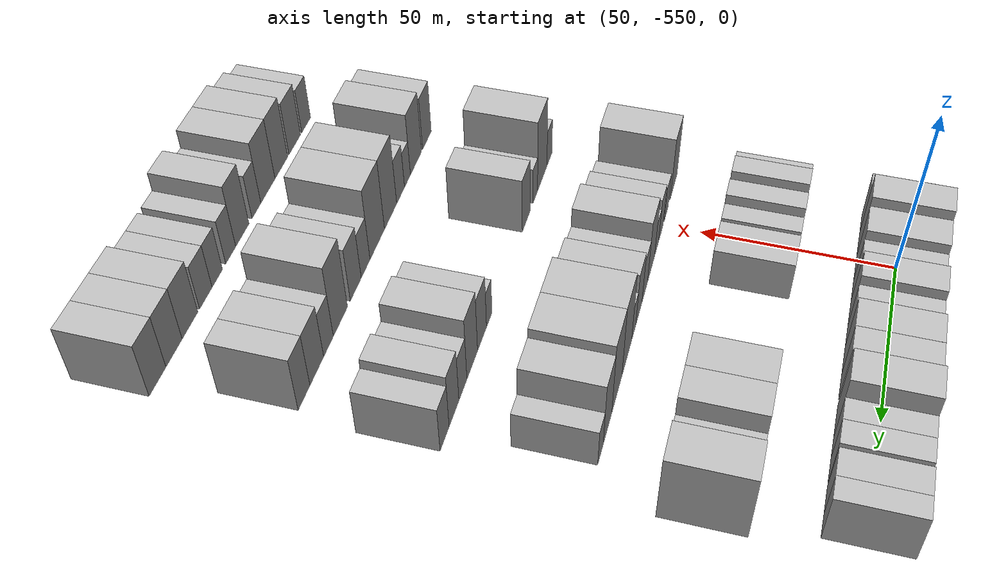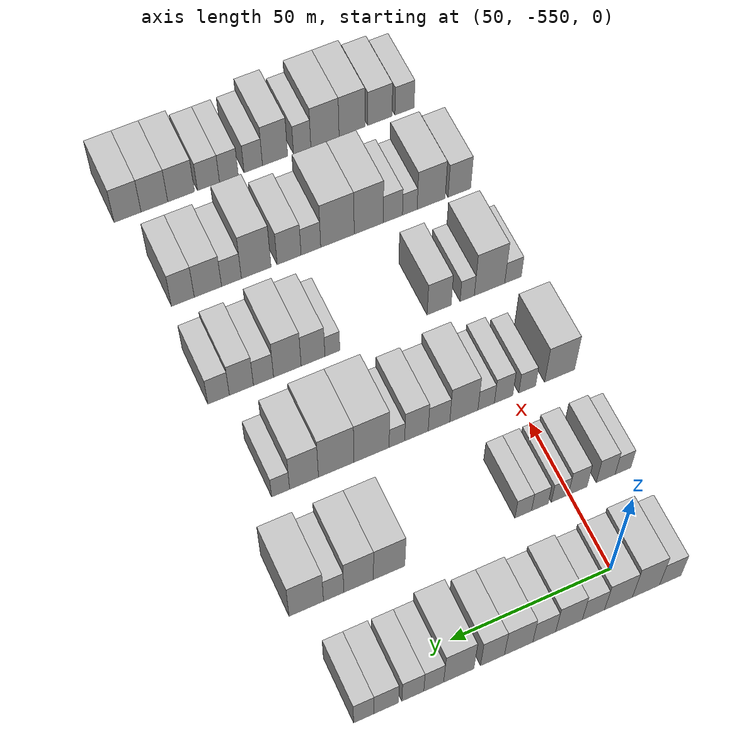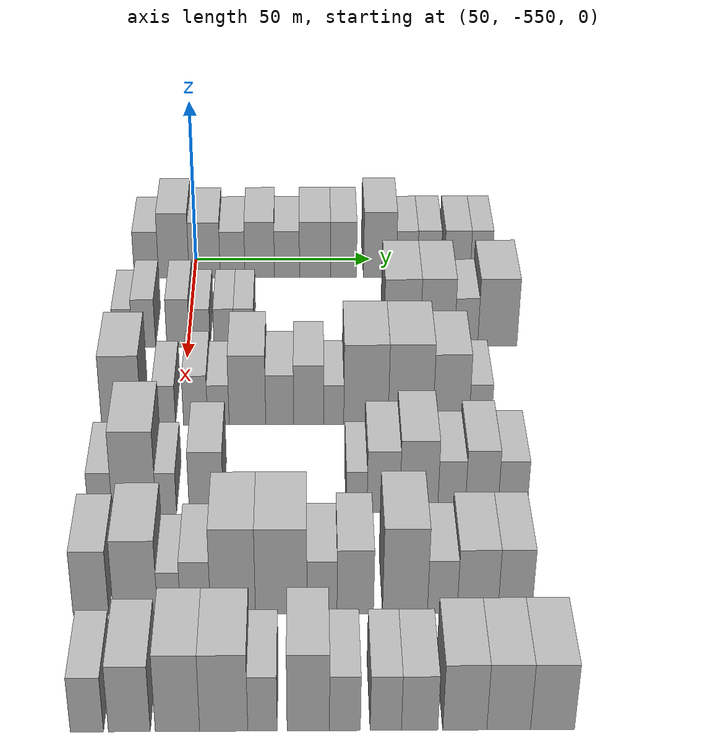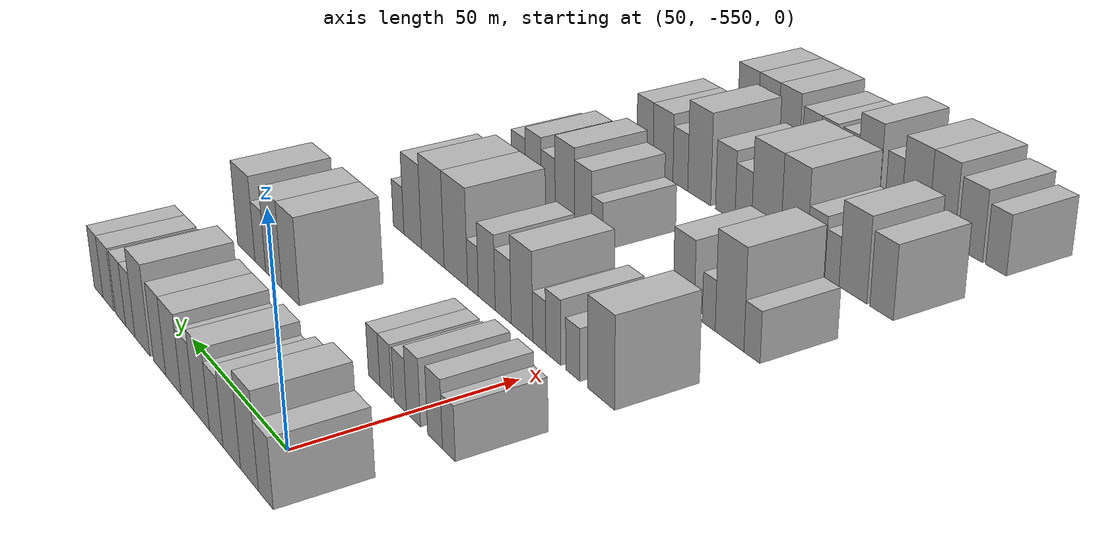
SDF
<sdf version="1.6">
 <world name="default">
  <model name="building_1">
   <static>1</static>
   <pose>50.0000 -563.5539 0 0.000000 0.000000 0.000000</pose>
   <link name="link">
    <pose>0 0 7.50 0 0 0</pose>
    <collision name="collision"><geometry><box><size>20.0000 6.8922 15.0000</size></box></geometry></collision>
    <visual name="visual">
     <cast_shadows>0</cast_shadows>
     <geometry><box><size>20.0000 6.8922 15.0000</size></box></geometry>
     <material>
      <script>
       <uri>model://HANNAS_wall/materials/scripts</uri>
       <uri>model://HANNAS_wall/materials/textures</uri>
       <name>vrc/HANNAS_wall</name>
      </script>
     </material>
    </visual>
   </link>
  </model>
  <model name="building_2">
   <static>1</static>
   <pose>50.0000 -555.8115 0 0.000000 0.000000 0.000000</pose>
   <link name="link">
    <pose>0 0 10.50 0 0 0</pose>
    <collision name="collision"><geometry><box><size>20.0000 8.5926 21.0000</size></box></geometry></collision>
    <visual name="visual">
     <cast_shadows>0</cast_shadows>
     <geometry><box><size>20.0000 8.5926 21.0000</size></box></geometry>
     <material>
      <script>
       <uri>model://HANNAS_wall/materials/scripts</uri>
       <uri>model://HANNAS_wall/materials/textures</uri>
       <name>vrc/HANNAS_wall</name>
      </script>
     </material>
    </visual>
   </link>
  </model>
  <model name="building_3">
   <static>1</static>
   <pose>50.0000 -547.1178 0 0.000000 0.000000 0.000000</pose>
   <link name="link">
    <pose>0 0 9.00 0 0 0</pose>
    <collision name="collision"><geometry><box><size>20.0000 8.7948 18.0000</size></box></geometry></collision>
    <visual name="visual">
     <cast_shadows>0</cast_shadows>
     <geometry><box><size>20.0000 8.7948 18.0000</size></box></geometry>
     <material>
      <script>
       <uri>model://HANNAS_wall/materials/scripts</uri>
       <uri>model://HANNAS_wall/materials/textures</uri>
       <name>vrc/HANNAS_wall</name>
      </script>
     </material>
    </visual>
   </link>
  </model>
  <model name="building_4">
   <static>1</static>
   <pose>50.0000 -539.2186 0 0.000000 0.000000 0.000000</pose>
   <link name="link">
    <pose>0 0 7.50 0 0 0</pose>
    <collision name="collision"><geometry><box><size>20.0000 7.0037 15.0000</size></box></geometry></collision>
    <visual name="visual">
     <cast_shadows>0</cast_shadows>
     <geometry><box><size>20.0000 7.0037 15.0000</size></box></geometry>
     <material>
      <script>
       <uri>model://HANNAS_wall/materials/scripts</uri>
       <uri>model://HANNAS_wall/materials/textures</uri>
       <name>vrc/HANNAS_wall</name>
      </script>
     </material>
    </visual>
   </link>
  </model>
  <model name="building_5">
   <static>1</static>
   <pose>50.0000 -531.5585 0 0.000000 0.000000 0.000000</pose>
   <link name="link">
    <pose>0 0 9.00 0 0 0</pose>
    <collision name="collision"><geometry><box><size>20.0000 8.3165 18.0000</size></box></geometry></collision>
    <visual name="visual">
     <cast_shadows>0</cast_shadows>
     <geometry><box><size>20.0000 8.3165 18.0000</size></box></geometry>
     <material>
      <script>
       <uri>model://HANNAS_wall/materials/scripts</uri>
       <uri>model://HANNAS_wall/materials/textures</uri>
       <name>vrc/HANNAS_wall</name>
      </script>
     </material>
    </visual>
   </link>
  </model>
  <model name="building_6">
   <static>1</static>
   <pose>50.0000 -523.8561 0 0.000000 0.000000 0.000000</pose>
   <link name="link">
    <pose>0 0 7.50 0 0 0</pose>
    <collision name="collision"><geometry><box><size>20.0000 7.0882 15.0000</size></box></geometry></collision>
    <visual name="visual">
     <cast_shadows>0</cast_shadows>
     <geometry><box><size>20.0000 7.0882 15.0000</size></box></geometry>
     <material>
      <script>
       <uri>model://HANNAS_wall/materials/scripts</uri>
       <uri>model://HANNAS_wall/materials/textures</uri>
       <name>vrc/HANNAS_wall</name>
      </script>
     </material>
    </visual>
   </link>
  </model>
  <model name="building_7">
   <static>1</static>
   <pose>50.0000 -515.9419 0 0.000000 0.000000 0.000000</pose>
   <link name="link">
    <pose>0 0 9.00 0 0 0</pose>
    <collision name="collision"><geometry><box><size>20.0000 8.7403 18.0000</size></box></geometry></collision>
    <visual name="visual">
     <cast_shadows>0</cast_shadows>
     <geometry><box><size>20.0000 8.7403 18.0000</size></box></geometry>
     <material>
      <script>
       <uri>model://HANNAS_wall/materials/scripts</uri>
       <uri>model://HANNAS_wall/materials/textures</uri>
       <name>vrc/HANNAS_wall</name>
      </script>
     </material>
    </visual>
   </link>
  </model>
  <model name="building_8">
   <static>1</static>
   <pose>50.0000 -507.8903 0 0.000000 0.000000 0.000000</pose>
   <link name="link">
    <pose>0 0 9.00 0 0 0</pose>
    <collision name="collision"><geometry><box><size>20.0000 7.3627 18.0000</size></box></geometry></collision>
    <visual name="visual">
     <cast_shadows>0</cast_shadows>
     <geometry><box><size>20.0000 7.3627 18.0000</size></box></geometry>
     <material>
      <script>
       <uri>model://HANNAS_wall/materials/scripts</uri>
       <uri>model://HANNAS_wall/materials/textures</uri>
       <name>vrc/HANNAS_wall</name>
      </script>
     </material>
    </visual>
   </link>
  </model>
  <model name="building_9">
   <static>1</static>
   <pose>50.0000 -497.5966 0 0.000000 0.000000 0.000000</pose>
   <link name="link">
    <pose>0 0 10.50 0 0 0</pose>
    <collision name="collision"><geometry><box><size>20.0000 9.2247 21.0000</size></box></geometry></collision>
    <visual name="visual">
     <cast_shadows>0</cast_shadows>
     <geometry><box><size>20.0000 9.2247 21.0000</size></box></geometry>
     <material>
      <script>
       <uri>model://HANNAS_wall/materials/scripts</uri>
       <uri>model://HANNAS_wall/materials/textures</uri>
       <name>vrc/HANNAS_wall</name>
      </script>
     </material>
    </visual>
   </link>
  </model>
  <model name="building_10">
   <static>1</static>
   <pose>50.0000 -489.9837 0 0.000000 0.000000 0.000000</pose>
   <link name="link">
    <pose>0 0 7.50 0 0 0</pose>
    <collision name="collision"><geometry><box><size>20.0000 6.0011 15.0000</size></box></geometry></collision>
    <visual name="visual">
     <cast_shadows>0</cast_shadows>
     <geometry><box><size>20.0000 6.0011 15.0000</size></box></geometry>
     <material>
      <script>
       <uri>model://HANNAS_wall/materials/scripts</uri>
       <uri>model://HANNAS_wall/materials/textures</uri>
       <name>vrc/HANNAS_wall</name>
      </script>
     </material>
    </visual>
   </link>
  </model>
  <model name="building_11">
   <static>1</static>
   <pose>50.0000 -483.6846 0 0.000000 0.000000 0.000000</pose>
   <link name="link">
    <pose>0 0 7.50 0 0 0</pose>
    <collision name="collision"><geometry><box><size>20.0000 6.5971 15.0000</size></box></geometry></collision>
    <visual name="visual">
     <cast_shadows>0</cast_shadows>
     <geometry><box><size>20.0000 6.5971 15.0000</size></box></geometry>
     <material>
      <script>
       <uri>model://HANNAS_wall/materials/scripts</uri>
       <uri>model://HANNAS_wall/materials/textures</uri>
       <name>vrc/HANNAS_wall</name>
      </script>
     </material>
    </visual>
   </link>
  </model>
  <model name="building_12">
   <static>1</static>
   <pose>50.0000 -475.7008 0 0.000000 0.000000 0.000000</pose>
   <link name="link">
    <pose>0 0 7.50 0 0 0</pose>
    <collision name="collision"><geometry><box><size>20.0000 7.3704 15.0000</size></box></geometry></collision>
    <visual name="visual">
     <cast_shadows>0</cast_shadows>
     <geometry><box><size>20.0000 7.3704 15.0000</size></box></geometry>
     <material>
      <script>
       <uri>model://HANNAS_wall/materials/scripts</uri>
       <uri>model://HANNAS_wall/materials/textures</uri>
       <name>vrc/HANNAS_wall</name>
      </script>
     </material>
    </visual>
   </link>
  </model>
  <model name="building_13">
   <static>1</static>
   <pose>50.0000 -468.9971 0 0.000000 0.000000 0.000000</pose>
   <link name="link">
    <pose>0 0 7.50 0 0 0</pose>
    <collision name="collision"><geometry><box><size>20.0000 6.0371 15.0000</size></box></geometry></collision>
    <visual name="visual">
     <cast_shadows>0</cast_shadows>
     <geometry><box><size>20.0000 6.0371 15.0000</size></box></geometry>
     <material>
      <script>
       <uri>model://HANNAS_wall/materials/scripts</uri>
       <uri>model://HANNAS_wall/materials/textures</uri>
       <name>vrc/HANNAS_wall</name>
      </script>
     </material>
    </visual>
   </link>
  </model>
  <model name="building_128">
   <static>1</static>
   <pose>85.0000 -567.4327 0 0.000000 0.000000 0.000000</pose>
   <link name="link">
    <pose>0 0 6.00 0 0 0</pose>
    <collision name="collision"><geometry><box><size>20.0000 5.1345 12.0000</size></box></geometry></collision>
    <visual name="visual">
     <cast_shadows>0</cast_shadows>
     <geometry><box><size>20.0000 5.1345 12.0000</size></box></geometry>
     <material>
      <script>
       <uri>model://HANNAS_wall/materials/scripts</uri>
       <uri>model://HANNAS_wall/materials/textures</uri>
       <name>vrc/HANNAS_wall</name>
      </script>
     </material>
    </visual>
   </link>
  </model>
  <model name="building_129">
   <static>1</static>
   <pose>85.0000 -561.7842 0 0.000000 0.000000 0.000000</pose>
   <link name="link">
    <pose>0 0 7.50 0 0 0</pose>
    <collision name="collision"><geometry><box><size>20.0000 6.1626 15.0000</size></box></geometry></collision>
    <visual name="visual">
     <cast_shadows>0</cast_shadows>
     <geometry><box><size>20.0000 6.1626 15.0000</size></box></geometry>
     <material>
      <script>
       <uri>model://HANNAS_wall/materials/scripts</uri>
       <uri>model://HANNAS_wall/materials/textures</uri>
       <name>vrc/HANNAS_wall</name>
      </script>
     </material>
    </visual>
   </link>
  </model>
  <model name="building_130">
   <static>1</static>
   <pose>85.0000 -552.6745 0 0.000000 0.000000 0.000000</pose>
   <link name="link">
    <pose>0 0 7.50 0 0 0</pose>
    <collision name="collision"><geometry><box><size>20.0000 6.0568 15.0000</size></box></geometry></collision>
    <visual name="visual">
     <cast_shadows>0</cast_shadows>
     <geometry><box><size>20.0000 6.0568 15.0000</size></box></geometry>
     <material>
      <script>
       <uri>model://HANNAS_wall/materials/scripts</uri>
       <uri>model://HANNAS_wall/materials/textures</uri>
       <name>vrc/HANNAS_wall</name>
      </script>
     </material>
    </visual>
   </link>
  </model>
  <model name="building_131">
   <static>1</static>
   <pose>85.0000 -546.8908 0 0.000000 0.000000 0.000000</pose>
   <link name="link">
    <pose>0 0 6.00 0 0 0</pose>
    <collision name="collision"><geometry><box><size>20.0000 5.5106 12.0000</size></box></geometry></collision>
    <visual name="visual">
     <cast_shadows>0</cast_shadows>
     <geometry><box><size>20.0000 5.5106 12.0000</size></box></geometry>
     <material>
      <script>
       <uri>model://HANNAS_wall/materials/scripts</uri>
       <uri>model://HANNAS_wall/materials/textures</uri>
       <name>vrc/HANNAS_wall</name>
      </script>
     </material>
    </visual>
   </link>
  </model>
  <model name="building_132">
   <static>1</static>
   <pose>85.0000 -540.4548 0 0.000000 0.000000 0.000000</pose>
   <link name="link">
    <pose>0 0 6.00 0 0 0</pose>
    <collision name="collision"><geometry><box><size>20.0000 5.3616 12.0000</size></box></geometry></collision>
    <visual name="visual">
     <cast_shadows>0</cast_shadows>
     <geometry><box><size>20.0000 5.3616 12.0000</size></box></geometry>
     <material>
      <script>
       <uri>model://HANNAS_wall/materials/scripts</uri>
       <uri>model://HANNAS_wall/materials/textures</uri>
       <name>vrc/HANNAS_wall</name>
      </script>
     </material>
    </visual>
   </link>
  </model>
  <model name="building_133">
   <static>1</static>
   <pose>85.0000 -535.1222 0 0.000000 0.000000 0.000000</pose>
   <link name="link">
    <pose>0 0 6.00 0 0 0</pose>
    <collision name="collision"><geometry><box><size>20.0000 5.3035 12.0000</size></box></geometry></collision>
    <visual name="visual">
     <cast_shadows>0</cast_shadows>
     <geometry><box><size>20.0000 5.3035 12.0000</size></box></geometry>
     <material>
      <script>
       <uri>model://HANNAS_wall/materials/scripts</uri>
       <uri>model://HANNAS_wall/materials/textures</uri>
       <name>vrc/HANNAS_wall</name>
      </script>
     </material>
    </visual>
   </link>
  </model>
  <model name="building_134">
   <static>1</static>
   <pose>85.0000 -492.9116 0 0.000000 0.000000 0.000000</pose>
   <link name="link">
    <pose>0 0 10.50 0 0 0</pose>
    <collision name="collision"><geometry><box><size>20.0000 9.7059 21.0000</size></box></geometry></collision>
    <visual name="visual">
     <cast_shadows>0</cast_shadows>
     <geometry><box><size>20.0000 9.7059 21.0000</size></box></geometry>
     <material>
      <script>
       <uri>model://HANNAS_wall/materials/scripts</uri>
       <uri>model://HANNAS_wall/materials/textures</uri>
       <name>vrc/HANNAS_wall</name>
      </script>
     </material>
    </visual>
   </link>
  </model>
  <model name="building_135">
   <static>1</static>
   <pose>85.0000 -483.4902 0 0.000000 0.000000 0.000000</pose>
   <link name="link">
    <pose>0 0 10.50 0 0 0</pose>
    <collision name="collision"><geometry><box><size>20.0000 9.1370 21.0000</size></box></geometry></collision>
    <visual name="visual">
     <cast_shadows>0</cast_shadows>
     <geometry><box><size>20.0000 9.1370 21.0000</size></box></geometry>
     <material>
      <script>
       <uri>model://HANNAS_wall/materials/scripts</uri>
       <uri>model://HANNAS_wall/materials/textures</uri>
       <name>vrc/HANNAS_wall</name>
      </script>
     </material>
    </visual>
   </link>
  </model>
  <model name="building_136">
   <static>1</static>
   <pose>85.0000 -475.8114 0 0.000000 0.000000 0.000000</pose>
   <link name="link">
    <pose>0 0 7.50 0 0 0</pose>
    <collision name="collision"><geometry><box><size>20.0000 6.2207 15.0000</size></box></geometry></collision>
    <visual name="visual">
     <cast_shadows>0</cast_shadows>
     <geometry><box><size>20.0000 6.2207 15.0000</size></box></geometry>
     <material>
      <script>
       <uri>model://HANNAS_wall/materials/scripts</uri>
       <uri>model://HANNAS_wall/materials/textures</uri>
       <name>vrc/HANNAS_wall</name>
      </script>
     </material>
    </visual>
   </link>
  </model>
  <model name="building_137">
   <static>1</static>
   <pose>85.0000 -467.4581 0 0.000000 0.000000 0.000000</pose>
   <link name="link">
    <pose>0 0 10.50 0 0 0</pose>
    <collision name="collision"><geometry><box><size>20.0000 10.4860 21.0000</size></box></geometry></collision>
    <visual name="visual">
     <cast_shadows>0</cast_shadows>
     <geometry><box><size>20.0000 10.4860 21.0000</size></box></geometry>
     <material>
      <script>
       <uri>model://HANNAS_wall/materials/scripts</uri>
       <uri>model://HANNAS_wall/materials/textures</uri>
       <name>vrc/HANNAS_wall</name>
      </script>
     </material>
    </visual>
   </link>
  </model>
  <model name="building_253">
   <static>1</static>
   <pose>120.0000 -564.9891 0 0.000000 0.000000 0.000000</pose>
   <link name="link">
    <pose>0 0 10.50 0 0 0</pose>
    <collision name="collision"><geometry><box><size>20.0000 10.0218 21.0000</size></box></geometry></collision>
    <visual name="visual">
     <cast_shadows>0</cast_shadows>
     <geometry><box><size>20.0000 10.0218 21.0000</size></box></geometry>
     <material>
      <script>
       <uri>model://HANNAS_wall/materials/scripts</uri>
       <uri>model://HANNAS_wall/materials/textures</uri>
       <name>vrc/HANNAS_wall</name>
      </script>
     </material>
    </visual>
   </link>
  </model>
  <model name="building_254">
   <static>1</static>
   <pose>120.0000 -554.2039 0 0.000000 0.000000 0.000000</pose>
   <link name="link">
    <pose>0 0 6.00 0 0 0</pose>
    <collision name="collision"><geometry><box><size>20.0000 5.5486 12.0000</size></box></geometry></collision>
    <visual name="visual">
     <cast_shadows>0</cast_shadows>
     <geometry><box><size>20.0000 5.5486 12.0000</size></box></geometry>
     <material>
      <script>
       <uri>model://HANNAS_wall/materials/scripts</uri>
       <uri>model://HANNAS_wall/materials/textures</uri>
       <name>vrc/HANNAS_wall</name>
      </script>
     </material>
    </visual>
   </link>
  </model>
  <model name="building_255">
   <static>1</static>
   <pose>120.0000 -546.4027 0 0.000000 0.000000 0.000000</pose>
   <link name="link">
    <pose>0 0 7.50 0 0 0</pose>
    <collision name="collision"><geometry><box><size>20.0000 6.0539 15.0000</size></box></geometry></collision>
    <visual name="visual">
     <cast_shadows>0</cast_shadows>
     <geometry><box><size>20.0000 6.0539 15.0000</size></box></geometry>
     <material>
      <script>
       <uri>model://HANNAS_wall/materials/scripts</uri>
       <uri>model://HANNAS_wall/materials/textures</uri>
       <name>vrc/HANNAS_wall</name>
      </script>
     </material>
    </visual>
   </link>
  </model>
  <model name="building_256">
   <static>1</static>
   <pose>120.0000 -540.6783 0 0.000000 0.000000 0.000000</pose>
   <link name="link">
    <pose>0 0 6.00 0 0 0</pose>
    <collision name="collision"><geometry><box><size>20.0000 5.3947 12.0000</size></box></geometry></collision>
    <visual name="visual">
     <cast_shadows>0</cast_shadows>
     <geometry><box><size>20.0000 5.3947 12.0000</size></box></geometry>
     <material>
      <script>
       <uri>model://HANNAS_wall/materials/scripts</uri>
       <uri>model://HANNAS_wall/materials/textures</uri>
       <name>vrc/HANNAS_wall</name>
      </script>
     </material>
    </visual>
   </link>
  </model>
  <model name="building_257">
   <static>1</static>
   <pose>120.0000 -533.3863 0 0.000000 0.000000 0.000000</pose>
   <link name="link">
    <pose>0 0 10.50 0 0 0</pose>
    <collision name="collision"><geometry><box><size>20.0000 9.1894 21.0000</size></box></geometry></collision>
    <visual name="visual">
     <cast_shadows>0</cast_shadows>
     <geometry><box><size>20.0000 9.1894 21.0000</size></box></geometry>
     <material>
      <script>
       <uri>model://HANNAS_wall/materials/scripts</uri>
       <uri>model://HANNAS_wall/materials/textures</uri>
       <name>vrc/HANNAS_wall</name>
      </script>
     </material>
    </visual>
   </link>
  </model>
  <model name="building_258">
   <static>1</static>
   <pose>120.0000 -525.2947 0 0.000000 0.000000 0.000000</pose>
   <link name="link">
    <pose>0 0 7.50 0 0 0</pose>
    <collision name="collision"><geometry><box><size>20.0000 6.9936 15.0000</size></box></geometry></collision>
    <visual name="visual">
     <cast_shadows>0</cast_shadows>
     <geometry><box><size>20.0000 6.9936 15.0000</size></box></geometry>
     <material>
      <script>
       <uri>model://HANNAS_wall/materials/scripts</uri>
       <uri>model://HANNAS_wall/materials/textures</uri>
       <name>vrc/HANNAS_wall</name>
      </script>
     </material>
    </visual>
   </link>
  </model>
  <model name="building_259">
   <static>1</static>
   <pose>120.0000 -517.9921 0 0.000000 0.000000 0.000000</pose>
   <link name="link">
    <pose>0 0 9.00 0 0 0</pose>
    <collision name="collision"><geometry><box><size>20.0000 7.6116 18.0000</size></box></geometry></collision>
    <visual name="visual">
     <cast_shadows>0</cast_shadows>
     <geometry><box><size>20.0000 7.6116 18.0000</size></box></geometry>
     <material>
      <script>
       <uri>model://HANNAS_wall/materials/scripts</uri>
       <uri>model://HANNAS_wall/materials/textures</uri>
       <name>vrc/HANNAS_wall</name>
      </script>
     </material>
    </visual>
   </link>
  </model>
  <model name="building_260">
   <static>1</static>
   <pose>120.0000 -511.6902 0 0.000000 0.000000 0.000000</pose>
   <link name="link">
    <pose>0 0 6.00 0 0 0</pose>
    <collision name="collision"><geometry><box><size>20.0000 4.9923 12.0000</size></box></geometry></collision>
    <visual name="visual">
     <cast_shadows>0</cast_shadows>
     <geometry><box><size>20.0000 4.9923 12.0000</size></box></geometry>
     <material>
      <script>
       <uri>model://HANNAS_wall/materials/scripts</uri>
       <uri>model://HANNAS_wall/materials/textures</uri>
       <name>vrc/HANNAS_wall</name>
      </script>
     </material>
    </visual>
   </link>
  </model>
  <model name="building_261">
   <static>1</static>
   <pose>120.0000 -503.5977 0 0.000000 0.000000 0.000000</pose>
   <link name="link">
    <pose>0 0 12.00 0 0 0</pose>
    <collision name="collision"><geometry><box><size>20.0000 11.1926 24.0000</size></box></geometry></collision>
    <visual name="visual">
     <cast_shadows>0</cast_shadows>
     <geometry><box><size>20.0000 11.1926 24.0000</size></box></geometry>
     <material>
      <script>
       <uri>model://HANNAS_wall/materials/scripts</uri>
       <uri>model://HANNAS_wall/materials/textures</uri>
       <name>vrc/HANNAS_wall</name>
      </script>
     </material>
    </visual>
   </link>
  </model>
  <model name="building_262">
   <static>1</static>
   <pose>120.0000 -492.3823 0 0.000000 0.000000 0.000000</pose>
   <link name="link">
    <pose>0 0 12.00 0 0 0</pose>
    <collision name="collision"><geometry><box><size>20.0000 11.2381 24.0000</size></box></geometry></collision>
    <visual name="visual">
     <cast_shadows>0</cast_shadows>
     <geometry><box><size>20.0000 11.2381 24.0000</size></box></geometry>
     <material>
      <script>
       <uri>model://HANNAS_wall/materials/scripts</uri>
       <uri>model://HANNAS_wall/materials/textures</uri>
       <name>vrc/HANNAS_wall</name>
      </script>
     </material>
    </visual>
   </link>
  </model>
  <model name="building_263">
   <static>1</static>
   <pose>120.0000 -482.2195 0 0.000000 0.000000 0.000000</pose>
   <link name="link">
    <pose>0 0 10.50 0 0 0</pose>
    <collision name="collision"><geometry><box><size>20.0000 9.0875 21.0000</size></box></geometry></collision>
    <visual name="visual">
     <cast_shadows>0</cast_shadows>
     <geometry><box><size>20.0000 9.0875 21.0000</size></box></geometry>
     <material>
      <script>
       <uri>model://HANNAS_wall/materials/scripts</uri>
       <uri>model://HANNAS_wall/materials/textures</uri>
       <name>vrc/HANNAS_wall</name>
      </script>
     </material>
    </visual>
   </link>
  </model>
  <model name="building_264">
   <static>1</static>
   <pose>120.0000 -474.8644 0 0.000000 0.000000 0.000000</pose>
   <link name="link">
    <pose>0 0 6.00 0 0 0</pose>
    <collision name="collision"><geometry><box><size>20.0000 5.6228 12.0000</size></box></geometry></collision>
    <visual name="visual">
     <cast_shadows>0</cast_shadows>
     <geometry><box><size>20.0000 5.6228 12.0000</size></box></geometry>
     <material>
      <script>
       <uri>model://HANNAS_wall/materials/scripts</uri>
       <uri>model://HANNAS_wall/materials/textures</uri>
       <name>vrc/HANNAS_wall</name>
      </script>
     </material>
    </visual>
   </link>
  </model>
  <model name="building_381">
   <static>1</static>
   <pose>155.0000 -567.1833 0 0.000000 0.000000 0.000000</pose>
   <link name="link">
    <pose>0 0 6.00 0 0 0</pose>
    <collision name="collision"><geometry><box><size>20.0000 5.6335 12.0000</size></box></geometry></collision>
    <visual name="visual">
     <cast_shadows>0</cast_shadows>
     <geometry><box><size>20.0000 5.6335 12.0000</size></box></geometry>
     <material>
      <script>
       <uri>model://HANNAS_wall/materials/scripts</uri>
       <uri>model://HANNAS_wall/materials/textures</uri>
       <name>vrc/HANNAS_wall</name>
      </script>
     </material>
    </visual>
   </link>
  </model>
  <model name="building_382">
   <static>1</static>
   <pose>155.0000 -559.2075 0 0.000000 0.000000 0.000000</pose>
   <link name="link">
    <pose>0 0 12.00 0 0 0</pose>
    <collision name="collision"><geometry><box><size>20.0000 10.3181 24.0000</size></box></geometry></collision>
    <visual name="visual">
     <cast_shadows>0</cast_shadows>
     <geometry><box><size>20.0000 10.3181 24.0000</size></box></geometry>
     <material>
      <script>
       <uri>model://HANNAS_wall/materials/scripts</uri>
       <uri>model://HANNAS_wall/materials/textures</uri>
       <name>vrc/HANNAS_wall</name>
      </script>
     </material>
    </visual>
   </link>
  </model>
  <model name="building_383">
   <static>1</static>
   <pose>155.0000 -551.6420 0 0.000000 0.000000 0.000000</pose>
   <link name="link">
    <pose>0 0 6.00 0 0 0</pose>
    <collision name="collision"><geometry><box><size>20.0000 4.8128 12.0000</size></box></geometry></collision>
    <visual name="visual">
     <cast_shadows>0</cast_shadows>
     <geometry><box><size>20.0000 4.8128 12.0000</size></box></geometry>
     <material>
      <script>
       <uri>model://HANNAS_wall/materials/scripts</uri>
       <uri>model://HANNAS_wall/materials/textures</uri>
       <name>vrc/HANNAS_wall</name>
      </script>
     </material>
    </visual>
   </link>
  </model>
  <model name="building_384">
   <static>1</static>
   <pose>155.0000 -542.2023 0 0.000000 0.000000 0.000000</pose>
   <link name="link">
    <pose>0 0 9.00 0 0 0</pose>
    <collision name="collision"><geometry><box><size>20.0000 8.0666 18.0000</size></box></geometry></collision>
    <visual name="visual">
     <cast_shadows>0</cast_shadows>
     <geometry><box><size>20.0000 8.0666 18.0000</size></box></geometry>
     <material>
      <script>
       <uri>model://HANNAS_wall/materials/scripts</uri>
       <uri>model://HANNAS_wall/materials/textures</uri>
       <name>vrc/HANNAS_wall</name>
      </script>
     </material>
    </visual>
   </link>
  </model>
  <model name="building_385">
   <static>1</static>
   <pose>155.0000 -506.8592 0 0.000000 0.000000 0.000000</pose>
   <link name="link">
    <pose>0 0 6.00 0 0 0</pose>
    <collision name="collision"><geometry><box><size>20.0000 4.8732 12.0000</size></box></geometry></collision>
    <visual name="visual">
     <cast_shadows>0</cast_shadows>
     <geometry><box><size>20.0000 4.8732 12.0000</size></box></geometry>
     <material>
      <script>
       <uri>model://HANNAS_wall/materials/scripts</uri>
       <uri>model://HANNAS_wall/materials/textures</uri>
       <name>vrc/HANNAS_wall</name>
      </script>
     </material>
    </visual>
   </link>
  </model>
  <model name="building_386">
   <static>1</static>
   <pose>155.0000 -500.5598 0 0.000000 0.000000 0.000000</pose>
   <link name="link">
    <pose>0 0 9.00 0 0 0</pose>
    <collision name="collision"><geometry><box><size>20.0000 7.7255 18.0000</size></box></geometry></collision>
    <visual name="visual">
     <cast_shadows>0</cast_shadows>
     <geometry><box><size>20.0000 7.7255 18.0000</size></box></geometry>
     <material>
      <script>
       <uri>model://HANNAS_wall/materials/scripts</uri>
       <uri>model://HANNAS_wall/materials/textures</uri>
       <name>vrc/HANNAS_wall</name>
      </script>
     </material>
    </visual>
   </link>
  </model>
  <model name="building_387">
   <static>1</static>
   <pose>155.0000 -492.2378 0 0.000000 0.000000 0.000000</pose>
   <link name="link">
    <pose>0 0 10.50 0 0 0</pose>
    <collision name="collision"><geometry><box><size>20.0000 8.9184 21.0000</size></box></geometry></collision>
    <visual name="visual">
     <cast_shadows>0</cast_shadows>
     <geometry><box><size>20.0000 8.9184 21.0000</size></box></geometry>
     <material>
      <script>
       <uri>model://HANNAS_wall/materials/scripts</uri>
       <uri>model://HANNAS_wall/materials/textures</uri>
       <name>vrc/HANNAS_wall</name>
      </script>
     </material>
    </visual>
   </link>
  </model>
  <model name="building_388">
   <static>1</static>
   <pose>155.0000 -484.5359 0 0.000000 0.000000 0.000000</pose>
   <link name="link">
    <pose>0 0 7.50 0 0 0</pose>
    <collision name="collision"><geometry><box><size>20.0000 6.4855 15.0000</size></box></geometry></collision>
    <visual name="visual">
     <cast_shadows>0</cast_shadows>
     <geometry><box><size>20.0000 6.4855 15.0000</size></box></geometry>
     <material>
      <script>
       <uri>model://HANNAS_wall/materials/scripts</uri>
       <uri>model://HANNAS_wall/materials/textures</uri>
       <name>vrc/HANNAS_wall</name>
      </script>
     </material>
    </visual>
   </link>
  </model>
  <model name="building_389">
   <static>1</static>
   <pose>155.0000 -477.4391 0 0.000000 0.000000 0.000000</pose>
   <link name="link">
    <pose>0 0 9.00 0 0 0</pose>
    <collision name="collision"><geometry><box><size>20.0000 7.7079 18.0000</size></box></geometry></collision>
    <visual name="visual">
     <cast_shadows>0</cast_shadows>
     <geometry><box><size>20.0000 7.7079 18.0000</size></box></geometry>
     <material>
      <script>
       <uri>model://HANNAS_wall/materials/scripts</uri>
       <uri>model://HANNAS_wall/materials/textures</uri>
       <name>vrc/HANNAS_wall</name>
      </script>
     </material>
    </visual>
   </link>
  </model>
  <model name="building_390">
   <static>1</static>
   <pose>155.0000 -470.1486 0 0.000000 0.000000 0.000000</pose>
   <link name="link">
    <pose>0 0 7.50 0 0 0</pose>
    <collision name="collision"><geometry><box><size>20.0000 6.8732 15.0000</size></box></geometry></collision>
    <visual name="visual">
     <cast_shadows>0</cast_shadows>
     <geometry><box><size>20.0000 6.8732 15.0000</size></box></geometry>
     <material>
      <script>
       <uri>model://HANNAS_wall/materials/scripts</uri>
       <uri>model://HANNAS_wall/materials/textures</uri>
       <name>vrc/HANNAS_wall</name>
      </script>
     </material>
    </visual>
   </link>
  </model>
  <model name="building_511">
   <static>1</static>
   <pose>190.0000 -566.0804 0 0.000000 0.000000 0.000000</pose>
   <link name="link">
    <pose>0 0 9.00 0 0 0</pose>
    <collision name="collision"><geometry><box><size>20.0000 7.8393 18.0000</size></box></geometry></collision>
    <visual name="visual">
     <cast_shadows>0</cast_shadows>
     <geometry><box><size>20.0000 7.8393 18.0000</size></box></geometry>
     <material>
      <script>
       <uri>model://HANNAS_wall/materials/scripts</uri>
       <uri>model://HANNAS_wall/materials/textures</uri>
       <name>vrc/HANNAS_wall</name>
      </script>
     </material>
    </visual>
   </link>
  </model>
  <model name="building_512">
   <static>1</static>
   <pose>190.0000 -556.3156 0 0.000000 0.000000 0.000000</pose>
   <link name="link">
    <pose>0 0 10.50 0 0 0</pose>
    <collision name="collision"><geometry><box><size>20.0000 9.6903 21.0000</size></box></geometry></collision>
    <visual name="visual">
     <cast_shadows>0</cast_shadows>
     <geometry><box><size>20.0000 9.6903 21.0000</size></box></geometry>
     <material>
      <script>
       <uri>model://HANNAS_wall/materials/scripts</uri>
       <uri>model://HANNAS_wall/materials/textures</uri>
       <name>vrc/HANNAS_wall</name>
      </script>
     </material>
    </visual>
   </link>
  </model>
  <model name="building_513">
   <static>1</static>
   <pose>190.0000 -548.9545 0 0.000000 0.000000 0.000000</pose>
   <link name="link">
    <pose>0 0 6.00 0 0 0</pose>
    <collision name="collision"><geometry><box><size>20.0000 5.0317 12.0000</size></box></geometry></collision>
    <visual name="visual">
     <cast_shadows>0</cast_shadows>
     <geometry><box><size>20.0000 5.0317 12.0000</size></box></geometry>
     <material>
      <script>
       <uri>model://HANNAS_wall/materials/scripts</uri>
       <uri>model://HANNAS_wall/materials/textures</uri>
       <name>vrc/HANNAS_wall</name>
      </script>
     </material>
    </visual>
   </link>
  </model>
  <model name="building_514">
   <static>1</static>
   <pose>190.0000 -543.1517 0 0.000000 0.000000 0.000000</pose>
   <link name="link">
    <pose>0 0 7.50 0 0 0</pose>
    <collision name="collision"><geometry><box><size>20.0000 6.5740 15.0000</size></box></geometry></collision>
    <visual name="visual">
     <cast_shadows>0</cast_shadows>
     <geometry><box><size>20.0000 6.5740 15.0000</size></box></geometry>
     <material>
      <script>
       <uri>model://HANNAS_wall/materials/scripts</uri>
       <uri>model://HANNAS_wall/materials/textures</uri>
       <name>vrc/HANNAS_wall</name>
      </script>
     </material>
    </visual>
   </link>
  </model>
  <model name="building_515">
   <static>1</static>
   <pose>190.0000 -534.9247 0 0.000000 0.000000 0.000000</pose>
   <link name="link">
    <pose>0 0 12.00 0 0 0</pose>
    <collision name="collision"><geometry><box><size>20.0000 9.8799 24.0000</size></box></geometry></collision>
    <visual name="visual">
     <cast_shadows>0</cast_shadows>
     <geometry><box><size>20.0000 9.8799 24.0000</size></box></geometry>
     <material>
      <script>
       <uri>model://HANNAS_wall/materials/scripts</uri>
       <uri>model://HANNAS_wall/materials/textures</uri>
       <name>vrc/HANNAS_wall</name>
      </script>
     </material>
    </visual>
   </link>
  </model>
  <model name="building_516">
   <static>1</static>
   <pose>190.0000 -524.3284 0 0.000000 0.000000 0.000000</pose>
   <link name="link">
    <pose>0 0 12.00 0 0 0</pose>
    <collision name="collision"><geometry><box><size>20.0000 11.3127 24.0000</size></box></geometry></collision>
    <visual name="visual">
     <cast_shadows>0</cast_shadows>
     <geometry><box><size>20.0000 11.3127 24.0000</size></box></geometry>
     <material>
      <script>
       <uri>model://HANNAS_wall/materials/scripts</uri>
       <uri>model://HANNAS_wall/materials/textures</uri>
       <name>vrc/HANNAS_wall</name>
      </script>
     </material>
    </visual>
   </link>
  </model>
  <model name="building_517">
   <static>1</static>
   <pose>190.0000 -515.3746 0 0.000000 0.000000 0.000000</pose>
   <link name="link">
    <pose>0 0 7.50 0 0 0</pose>
    <collision name="collision"><geometry><box><size>20.0000 6.5949 15.0000</size></box></geometry></collision>
    <visual name="visual">
     <cast_shadows>0</cast_shadows>
     <geometry><box><size>20.0000 6.5949 15.0000</size></box></geometry>
     <material>
      <script>
       <uri>model://HANNAS_wall/materials/scripts</uri>
       <uri>model://HANNAS_wall/materials/textures</uri>
       <name>vrc/HANNAS_wall</name>
      </script>
     </material>
    </visual>
   </link>
  </model>
  <model name="building_518">
   <static>1</static>
   <pose>190.0000 -508.0679 0 0.000000 0.000000 0.000000</pose>
   <link name="link">
    <pose>0 0 9.00 0 0 0</pose>
    <collision name="collision"><geometry><box><size>20.0000 8.0184 18.0000</size></box></geometry></collision>
    <visual name="visual">
     <cast_shadows>0</cast_shadows>
     <geometry><box><size>20.0000 8.0184 18.0000</size></box></geometry>
     <material>
      <script>
       <uri>model://HANNAS_wall/materials/scripts</uri>
       <uri>model://HANNAS_wall/materials/textures</uri>
       <name>vrc/HANNAS_wall</name>
      </script>
     </material>
    </visual>
   </link>
  </model>
  <model name="building_519">
   <static>1</static>
   <pose>190.0000 -497.1338 0 0.000000 0.000000 0.000000</pose>
   <link name="link">
    <pose>0 0 12.00 0 0 0</pose>
    <collision name="collision"><geometry><box><size>20.0000 9.8498 24.0000</size></box></geometry></collision>
    <visual name="visual">
     <cast_shadows>0</cast_shadows>
     <geometry><box><size>20.0000 9.8498 24.0000</size></box></geometry>
     <material>
      <script>
       <uri>model://HANNAS_wall/materials/scripts</uri>
       <uri>model://HANNAS_wall/materials/textures</uri>
       <name>vrc/HANNAS_wall</name>
      </script>
     </material>
    </visual>
   </link>
  </model>
  <model name="building_520">
   <static>1</static>
   <pose>190.0000 -488.9374 0 0.000000 0.000000 0.000000</pose>
   <link name="link">
    <pose>0 0 7.50 0 0 0</pose>
    <collision name="collision"><geometry><box><size>20.0000 6.5431 15.0000</size></box></geometry></collision>
    <visual name="visual">
     <cast_shadows>0</cast_shadows>
     <geometry><box><size>20.0000 6.5431 15.0000</size></box></geometry>
     <material>
      <script>
       <uri>model://HANNAS_wall/materials/scripts</uri>
       <uri>model://HANNAS_wall/materials/textures</uri>
       <name>vrc/HANNAS_wall</name>
      </script>
     </material>
    </visual>
   </link>
  </model>
  <model name="building_521">
   <static>1</static>
   <pose>190.0000 -481.1881 0 0.000000 0.000000 0.000000</pose>
   <link name="link">
    <pose>0 0 9.00 0 0 0</pose>
    <collision name="collision"><geometry><box><size>20.0000 8.9554 18.0000</size></box></geometry></collision>
    <visual name="visual">
     <cast_shadows>0</cast_shadows>
     <geometry><box><size>20.0000 8.9554 18.0000</size></box></geometry>
     <material>
      <script>
       <uri>model://HANNAS_wall/materials/scripts</uri>
       <uri>model://HANNAS_wall/materials/textures</uri>
       <name>vrc/HANNAS_wall</name>
      </script>
     </material>
    </visual>
   </link>
  </model>
  <model name="building_522">
   <static>1</static>
   <pose>190.0000 -472.9707 0 0.000000 0.000000 0.000000</pose>
   <link name="link">
    <pose>0 0 9.00 0 0 0</pose>
    <collision name="collision"><geometry><box><size>20.0000 7.4794 18.0000</size></box></geometry></collision>
    <visual name="visual">
     <cast_shadows>0</cast_shadows>
     <geometry><box><size>20.0000 7.4794 18.0000</size></box></geometry>
     <material>
      <script>
       <uri>model://HANNAS_wall/materials/scripts</uri>
       <uri>model://HANNAS_wall/materials/textures</uri>
       <name>vrc/HANNAS_wall</name>
      </script>
     </material>
    </visual>
   </link>
  </model>
  <model name="building_637">
   <static>1</static>
   <pose>225.0000 -563.6201 0 0.000000 0.000000 0.000000</pose>
   <link name="link">
    <pose>0 0 7.50 0 0 0</pose>
    <collision name="collision"><geometry><box><size>20.0000 6.7598 15.0000</size></box></geometry></collision>
    <visual name="visual">
     <cast_shadows>0</cast_shadows>
     <geometry><box><size>20.0000 6.7598 15.0000</size></box></geometry>
     <material>
      <script>
       <uri>model://HANNAS_wall/materials/scripts</uri>
       <uri>model://HANNAS_wall/materials/textures</uri>
       <name>vrc/HANNAS_wall</name>
      </script>
     </material>
    </visual>
   </link>
  </model>
  <model name="building_638">
   <static>1</static>
   <pose>225.0000 -554.9696 0 0.000000 0.000000 0.000000</pose>
   <link name="link">
    <pose>0 0 9.00 0 0 0</pose>
    <collision name="collision"><geometry><box><size>20.0000 8.5411 18.0000</size></box></geometry></collision>
    <visual name="visual">
     <cast_shadows>0</cast_shadows>
     <geometry><box><size>20.0000 8.5411 18.0000</size></box></geometry>
     <material>
      <script>
       <uri>model://HANNAS_wall/materials/scripts</uri>
       <uri>model://HANNAS_wall/materials/textures</uri>
       <name>vrc/HANNAS_wall</name>
      </script>
     </material>
    </visual>
   </link>
  </model>
  <model name="building_639">
   <static>1</static>
   <pose>225.0000 -545.1726 0 0.000000 0.000000 0.000000</pose>
   <link name="link">
    <pose>0 0 10.50 0 0 0</pose>
    <collision name="collision"><geometry><box><size>20.0000 9.0528 21.0000</size></box></geometry></collision>
    <visual name="visual">
     <cast_shadows>0</cast_shadows>
     <geometry><box><size>20.0000 9.0528 21.0000</size></box></geometry>
     <material>
      <script>
       <uri>model://HANNAS_wall/materials/scripts</uri>
       <uri>model://HANNAS_wall/materials/textures</uri>
       <name>vrc/HANNAS_wall</name>
      </script>
     </material>
    </visual>
   </link>
  </model>
  <model name="building_640">
   <static>1</static>
   <pose>225.0000 -535.7410 0 0.000000 0.000000 0.000000</pose>
   <link name="link">
    <pose>0 0 10.50 0 0 0</pose>
    <collision name="collision"><geometry><box><size>20.0000 9.8105 21.0000</size></box></geometry></collision>
    <visual name="visual">
     <cast_shadows>0</cast_shadows>
     <geometry><box><size>20.0000 9.8105 21.0000</size></box></geometry>
     <material>
      <script>
       <uri>model://HANNAS_wall/materials/scripts</uri>
       <uri>model://HANNAS_wall/materials/textures</uri>
       <name>vrc/HANNAS_wall</name>
      </script>
     </material>
    </visual>
   </link>
  </model>
  <model name="building_641">
   <static>1</static>
   <pose>225.0000 -527.8354 0 0.000000 0.000000 0.000000</pose>
   <link name="link">
    <pose>0 0 7.50 0 0 0</pose>
    <collision name="collision"><geometry><box><size>20.0000 6.0006 15.0000</size></box></geometry></collision>
    <visual name="visual">
     <cast_shadows>0</cast_shadows>
     <geometry><box><size>20.0000 6.0006 15.0000</size></box></geometry>
     <material>
      <script>
       <uri>model://HANNAS_wall/materials/scripts</uri>
       <uri>model://HANNAS_wall/materials/textures</uri>
       <name>vrc/HANNAS_wall</name>
      </script>
     </material>
    </visual>
   </link>
  </model>
  <model name="building_642">
   <static>1</static>
   <pose>225.0000 -518.5180 0 0.000000 0.000000 0.000000</pose>
   <link name="link">
    <pose>0 0 10.50 0 0 0</pose>
    <collision name="collision"><geometry><box><size>20.0000 8.6342 21.0000</size></box></geometry></collision>
    <visual name="visual">
     <cast_shadows>0</cast_shadows>
     <geometry><box><size>20.0000 8.6342 21.0000</size></box></geometry>
     <material>
      <script>
       <uri>model://HANNAS_wall/materials/scripts</uri>
       <uri>model://HANNAS_wall/materials/textures</uri>
       <name>vrc/HANNAS_wall</name>
      </script>
     </material>
    </visual>
   </link>
  </model>
  <model name="building_643">
   <static>1</static>
   <pose>225.0000 -511.0483 0 0.000000 0.000000 0.000000</pose>
   <link name="link">
    <pose>0 0 7.50 0 0 0</pose>
    <collision name="collision"><geometry><box><size>20.0000 6.3052 15.0000</size></box></geometry></collision>
    <visual name="visual">
     <cast_shadows>0</cast_shadows>
     <geometry><box><size>20.0000 6.3052 15.0000</size></box></geometry>
     <material>
      <script>
       <uri>model://HANNAS_wall/materials/scripts</uri>
       <uri>model://HANNAS_wall/materials/textures</uri>
       <name>vrc/HANNAS_wall</name>
      </script>
     </material>
    </visual>
   </link>
  </model>
  <model name="building_644">
   <static>1</static>
   <pose>225.0000 -502.7081 0 0.000000 0.000000 0.000000</pose>
   <link name="link">
    <pose>0 0 7.50 0 0 0</pose>
    <collision name="collision"><geometry><box><size>20.0000 6.3751 15.0000</size></box></geometry></collision>
    <visual name="visual">
     <cast_shadows>0</cast_shadows>
     <geometry><box><size>20.0000 6.3751 15.0000</size></box></geometry>
     <material>
      <script>
       <uri>model://HANNAS_wall/materials/scripts</uri>
       <uri>model://HANNAS_wall/materials/textures</uri>
       <name>vrc/HANNAS_wall</name>
      </script>
     </material>
    </visual>
   </link>
  </model>
  <model name="building_645">
   <static>1</static>
   <pose>225.0000 -495.7976 0 0.000000 0.000000 0.000000</pose>
   <link name="link">
    <pose>0 0 7.50 0 0 0</pose>
    <collision name="collision"><geometry><box><size>20.0000 7.4458 15.0000</size></box></geometry></collision>
    <visual name="visual">
     <cast_shadows>0</cast_shadows>
     <geometry><box><size>20.0000 7.4458 15.0000</size></box></geometry>
     <material>
      <script>
       <uri>model://HANNAS_wall/materials/scripts</uri>
       <uri>model://HANNAS_wall/materials/textures</uri>
       <name>vrc/HANNAS_wall</name>
      </script>
     </material>
    </visual>
   </link>
  </model>
  <model name="building_646">
   <static>1</static>
   <pose>225.0000 -486.5816 0 0.000000 0.000000 0.000000</pose>
   <link name="link">
    <pose>0 0 9.00 0 0 0</pose>
    <collision name="collision"><geometry><box><size>20.0000 8.9862 18.0000</size></box></geometry></collision>
    <visual name="visual">
     <cast_shadows>0</cast_shadows>
     <geometry><box><size>20.0000 8.9862 18.0000</size></box></geometry>
     <material>
      <script>
       <uri>model://HANNAS_wall/materials/scripts</uri>
       <uri>model://HANNAS_wall/materials/textures</uri>
       <name>vrc/HANNAS_wall</name>
      </script>
     </material>
    </visual>
   </link>
  </model>
  <model name="building_647">
   <static>1</static>
   <pose>225.0000 -477.6276 0 0.000000 0.000000 0.000000</pose>
   <link name="link">
    <pose>0 0 9.00 0 0 0</pose>
    <collision name="collision"><geometry><box><size>20.0000 8.9219 18.0000</size></box></geometry></collision>
    <visual name="visual">
     <cast_shadows>0</cast_shadows>
     <geometry><box><size>20.0000 8.9219 18.0000</size></box></geometry>
     <material>
      <script>
       <uri>model://HANNAS_wall/materials/scripts</uri>
       <uri>model://HANNAS_wall/materials/textures</uri>
       <name>vrc/HANNAS_wall</name>
      </script>
     </material>
    </visual>
   </link>
  </model>
  <model name="building_648">
   <static>1</static>
   <pose>225.0000 -468.6737 0 0.000000 0.000000 0.000000</pose>
   <link name="link">
    <pose>0 0 9.00 0 0 0</pose>
    <collision name="collision"><geometry><box><size>20.0000 8.9860 18.0000</size></box></geometry></collision>
    <visual name="visual">
     <cast_shadows>0</cast_shadows>
     <geometry><box><size>20.0000 8.9860 18.0000</size></box></geometry>
     <material>
      <script>
       <uri>model://HANNAS_wall/materials/scripts</uri>
       <uri>model://HANNAS_wall/materials/textures</uri>
       <name>vrc/HANNAS_wall</name>
      </script>
     </material>
    </visual>
   </link>
  </model>
 </world>
</sdf>
